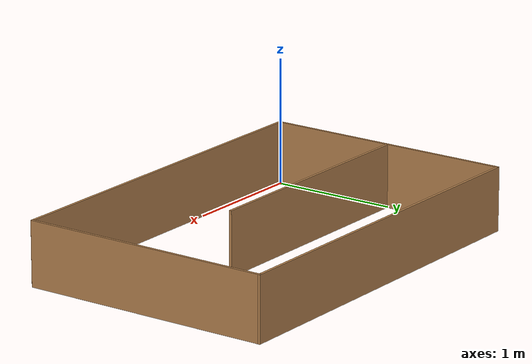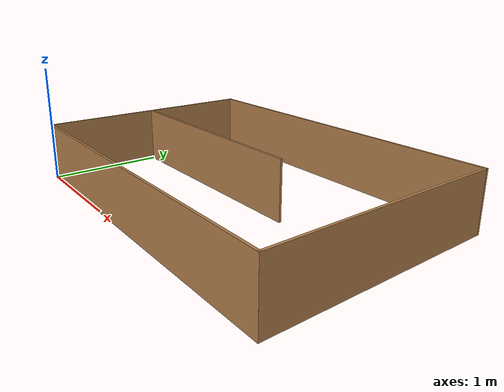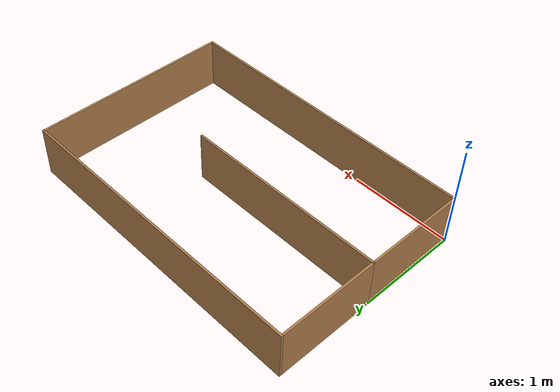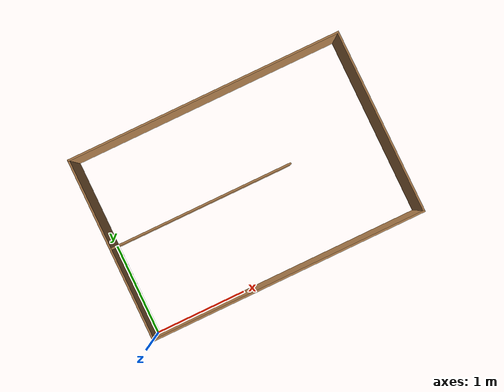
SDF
<?xml version='1.0'?>
<sdf version='1.6'>
  <model name='Motion4'>
    <pose frame=''>1.49775 0.986767 0 0 -0 0</pose>
    <link name='Wall_0'>
      <collision name='Wall_0_Collision'>
        <geometry>
          <box>
            <size>3 0.02 0.5</size>
          </box>
        </geometry>
        <pose frame=''>0 0 0.25 0 -0 0</pose>
      </collision>
      <visual name='Wall_0_Visual'>
        <pose frame=''>0 0 0.25 0 -0 0</pose>
        <geometry>
          <box>
            <size>3 0.02 0.5</size>
          </box>
        </geometry>
        <material>
          <script>
            <uri>file://media/materials/scripts/gazebo.material</uri>
            <name>Gazebo/Wood</name>
          </script>
          <ambient>1 1 1 1</ambient>
        </material>
        <meta>
          <layer>0</layer>
        </meta>
      </visual>
      <pose frame=''>-0.000247 -0.990229 0 0 -0 0</pose>
    </link>
    <link name='Wall_11'>
      <collision name='Wall_11_Collision'>
        <geometry>
          <box>
            <size>1.02046 0.02 0.5</size>
          </box>
        </geometry>
        <pose frame=''>0 0 0.25 0 -0 0</pose>
      </collision>
      <visual name='Wall_11_Visual'>
        <pose frame=''>0 0 0.25 0 -0 0</pose>
        <geometry>
          <box>
            <size>1.02046 0.02 0.5</size>
          </box>
        </geometry>
        <material>
          <script>
            <uri>file://media/materials/scripts/gazebo.material</uri>
            <name>Gazebo/Wood</name>
          </script>
          <ambient>1 1 1 1</ambient>
        </material>
        <meta>
          <layer>0</layer>
        </meta>
      </visual>
      <pose frame=''>-1.49 -0.489998 0 0 -0 1.5703</pose>
    </link>
    <link name='Wall_3'>
      <collision name='Wall_3_Collision'>
        <geometry>
          <box>
            <size>2 0.02 0.5</size>
          </box>
        </geometry>
        <pose frame=''>0 0 0.25 0 -0 0</pose>
      </collision>
      <visual name='Wall_3_Visual'>
        <pose frame=''>0 0 0.25 0 -0 0</pose>
        <geometry>
          <box>
            <size>2 0.02 0.5</size>
          </box>
        </geometry>
        <material>
          <script>
            <uri>file://media/materials/scripts/gazebo.material</uri>
            <name>Gazebo/Wood</name>
          </script>
          <ambient>1 1 1 1</ambient>
        </material>
        <meta>
          <layer>0</layer>
        </meta>
      </visual>
      <pose frame=''>1.49 2e-06 0 0 -0 1.57055</pose>
    </link>
    <link name='Wall_5'>
      <collision name='Wall_5_Collision'>
        <geometry>
          <box>
            <size>3 0.02 0.5</size>
          </box>
        </geometry>
        <pose frame=''>0 0 0.25 0 -0 0</pose>
      </collision>
      <visual name='Wall_5_Visual'>
        <pose frame=''>0 0 0.25 0 -0 0</pose>
        <geometry>
          <box>
            <size>3 0.02 0.5</size>
          </box>
        </geometry>
        <material>
          <script>
            <uri>file://media/materials/scripts/gazebo.material</uri>
            <name>Gazebo/Wood</name>
          </script>
          <ambient>1 1 1 1</ambient>
        </material>
        <meta>
          <layer>0</layer>
        </meta>
      </visual>
      <pose frame=''>0.00025 0.990233 0 0 -0 3.14159</pose>
    </link>
    <link name='Wall_7'>
      <collision name='Wall_7_Collision'>
        <geometry>
          <box>
            <size>1 0.02 0.5</size>
          </box>
        </geometry>
        <pose frame=''>0 0 0.25 0 -0 0</pose>
      </collision>
      <visual name='Wall_7_Visual'>
        <pose frame=''>0 0 0.25 0 -0 0</pose>
        <geometry>
          <box>
            <size>1 0.02 0.5</size>
          </box>
        </geometry>
        <material>
          <script>
            <uri>file://media/materials/scripts/gazebo.material</uri>
            <name>Gazebo/Wood</name>
          </script>
          <ambient>1 1 1 1</ambient>
        </material>
        <meta>
          <layer>0</layer>
        </meta>
      </visual>
      <pose frame=''>-1.48975 0.500233 0 0 -0 -1.5708</pose>
    </link>
    <link name='Wall_9'>
      <collision name='Wall_9_Collision'>
        <geometry>
          <box>
            <size>2 0.02 0.5</size>
          </box>
        </geometry>
        <pose frame=''>0 0 0.25 0 -0 0</pose>
      </collision>
      <visual name='Wall_9_Visual'>
        <pose frame=''>0 0 0.25 0 -0 0</pose>
        <geometry>
          <box>
            <size>2 0.02 0.5</size>
          </box>
        </geometry>
        <material>
          <script>
            <uri>file://media/materials/scripts/gazebo.material</uri>
            <name>Gazebo/Wood</name>
          </script>
          <ambient>1 1 1 1</ambient>
        </material>
        <meta>
          <layer>0</layer>
        </meta>
      </visual>
      <pose frame=''>-0.49975 0.010233 0 0 -0 0</pose>
    </link>
    <static>1</static>
  </model>
</sdf>
